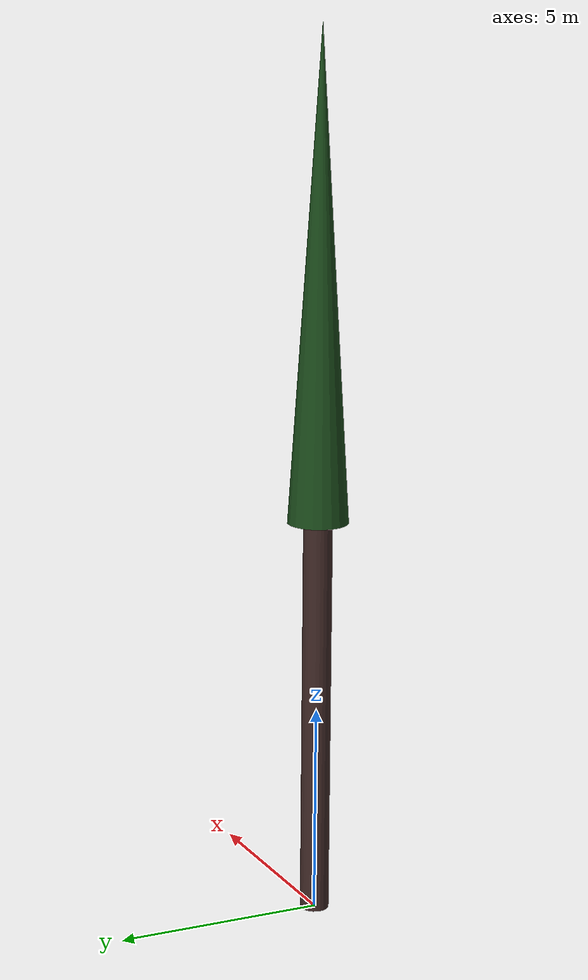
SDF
<?xml version="1.0" ?>
<sdf version="1.10">
  <model name="cypres_provence_09">
    <static>true</static>

    <!-- Tronc -->
    <link name="trunk">
      <pose>0 0 4.81026940142275 0 0 0</pose>
      <visual name="trunk_visual">
        <geometry>
          <cylinder>
            <radius>0.34433855095835375</radius>
            <length>9.6205388028455</length>
          </cylinder>
        </geometry>
        <material>
          <ambient>0.24 0.15 0.14 1</ambient>
          <diffuse>0.24 0.15 0.14 1</diffuse>
          <specular>0.1 0.1 0.1 1</specular>
        </material>
      </visual>
      <collision name="trunk_collision">
        <geometry>
          <cylinder>
            <radius>0.34433855095835375</radius>
            <length>9.6205388028455</length>
          </cylinder>
        </geometry>
      </collision>
    </link>

    <!-- Feuillage -->
    <link name="crown">
      <pose>0 0 15.389202317999354 0 0 0</pose>
      <visual name="crown_visual">
        <geometry>
          <cone>
              <radius>0.725183086632656</radius>
              <length>11.537327030307708</length>
            </cone>
        </geometry>
        <material>
          <ambient>0.10 0.29 0.10 1</ambient>
          <diffuse>0.10 0.29 0.10 1</diffuse>
          <specular>0.1 0.1 0.1 1</specular>
        </material>
      </visual>
      <collision name="crown_collision">
        <geometry>
          <sphere>
            <radius>0.5801464693061248</radius>
          </sphere>
        </geometry>
      </collision>
    </link>

    <!-- Joint tronc-feuillage -->
    <joint name="trunk_crown_joint" type="fixed">
      <parent>trunk</parent>
      <child>crown</child>
    </joint>

  </model>
</sdf>
